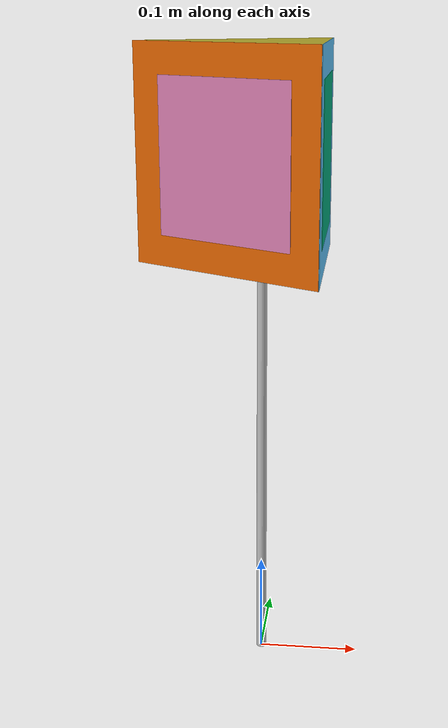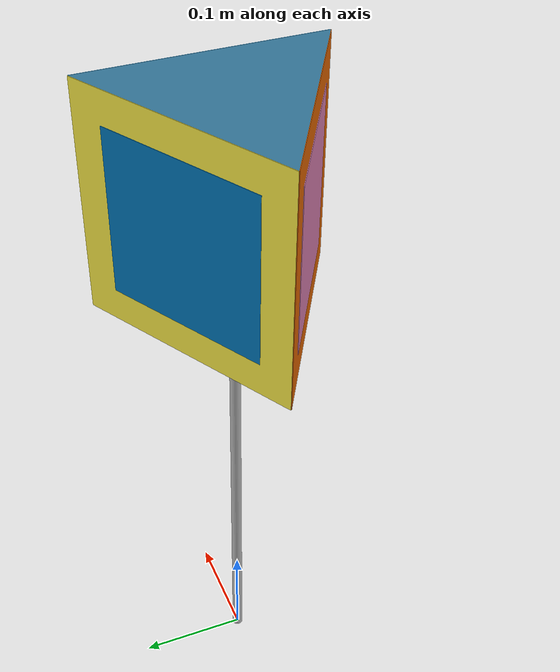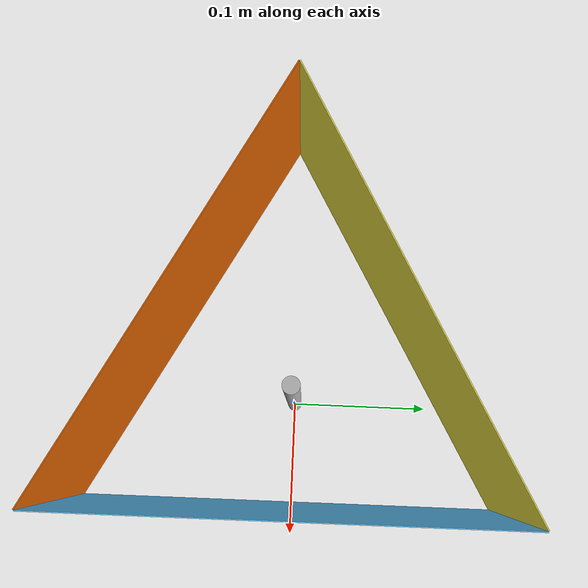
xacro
<?xml version="1.0" encoding="utf-8"?>
<robot xmlns:xacro="http://www.ros.org/wiki/xacro" name="marker">
  <xacro:property name="package" value="marker_description" />
  <xacro:arg name="name" default=""/>
  <xacro:property name="name" value="$(arg name)" />
  <xacro:arg name="family" default="artag"/>
  <xacro:property name="family" value="$(arg family)" />
  <xacro:arg name="id" default="0"/>
  <xacro:property name="id" value="${$(arg id)}" />
  <xacro:arg name="marker_size" default="0.15"/>
  <xacro:property name="marker_size" value="${$(arg marker_size)}" />
  <xacro:arg name="margin" default="0.03"/>
  <xacro:property name="margin" value="${$(arg margin)}" />
  <xacro:arg name="pole_height" default="0.417"/>
  <xacro:property name="pole_height" value="${$(arg pole_height)}" />
  <xacro:arg name="pole_radius" default="0.005"/>
  <xacro:property name="pole_radius" value="${$(arg pole_radius)}" />
  <xacro:include filename="macros/marker.urdf.xacro" />
  <xacro:include filename="macros/pole.urdf.xacro" />
  <xacro:property name="width" value="${marker_size + margin*2}" />
  <xacro:property name="radius" value="${width * sqrt(3) / 6}" />
  <xacro:if value="${name == ''}">
    <xacro:property name="name" value="${family}_${id}" />
  </xacro:if>

  <link name="${name}_box">
  </link>
  <xacro:marker name='${name}_front'/>
  <xacro:marker name='${name}_left'/>
  <xacro:marker name='${name}_right'/>
  <xacro:pole height='${pole_height}' radius='${pole_radius}' name='${name}'/>
  <joint name="margin_front_joint" type="fixed">
    <parent link="${name}_box"/>
    <child link="${name}_front"/>
    <origin xyz="${radius} 0 0" rpy="0 0 0"/>
    <axis xyz="0 0 0"/>
  </joint>
  <joint name="margin_left_joint" type="fixed">
    <parent link="${name}_box"/>
    <child link="${name}_left"/>
    <origin xyz="-${radius * 0.5} ${width / 4} 0" rpy="0 0 ${pi*2/3}"/>
    <axis xyz="0 0 0"/>
  </joint>
  <joint name="margin_right_joint" type="fixed">
    <parent link="${name}_box"/>
    <child link="${name}_right"/>
    <origin xyz="-${radius * 0.5} -${width / 4} 0" rpy="0 0 ${-pi*2/3}"/>
    <axis xyz="0 0 0"/>
  </joint>
  <joint name="${name}_pole_joint" type="fixed">
    <parent link="${name}"/>
    <child link="${name}_box"/>
    <origin xyz="0 0 ${pole_height + marker_size/2 + margin}" rpy="0 0 0"/>
    <axis xyz="0 0 0"/>
  </joint>
</robot>

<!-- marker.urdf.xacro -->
<robot xmlns:xacro="http://wiki.ros.org/xacro">
<xacro:macro name="marker" params="marker_size:=^0.15 margin:=^0.03 name:=^'marker' family:=^'artag' id:=^'0'">
<xacro:property name="material" value="${family}_${id}" />
  <link name="${name}">
    <visual>
        <geometry>
          <box size="0.0005 ${marker_size + margin*2} ${marker_size + margin*2}" />
        </geometry>
        <origin xyz="0.00025 0 0" rpy="0 0 0"/>
    </visual>
    <collision>
        <geometry>
          <box size="0.0005 ${marker_size + margin*2} ${marker_size + margin*2}" />
        </geometry>
        <origin xyz="0.00025 0 0" rpy="0 0 0"/>
    </collision>
    <inertial>
      <mass value="1.0" />
      <inertia  ixx="1.0" ixy="0.0"  ixz="0.0"  iyy="1.0"  iyz="0.0"  izz="1.0" />
    </inertial>
  </link>
  <link name="${name}_material">
    <visual>
        <geometry>
          <box size="0.0005 ${marker_size} ${marker_size}" />
        </geometry>
    </visual>
    <collision>
        <geometry>
          <box size="0.0005 ${marker_size} ${marker_size}" />
        </geometry>
    </collision>
    <inertial>
      <mass value="1.0" />
      <inertia  ixx="1.0" ixy="0.0"  ixz="0.0"  iyy="1.0"  iyz="0.0"  izz="1.0" />
    </inertial>
  </link>
  <joint name="${name}_material_joint" type="continuous">
    <parent link="${name}"/>
    <child link="${name}_material"/>
    <origin xyz="0.00075 0 0" rpy="0 0 0"/>
    <axis xyz="0 0 0"/>
    <limit effort="0" velocity="0"/>
  </joint>
  <gazebo reference="${name}_material">
    <material>${material}</material>
  </gazebo>
  <gazebo reference="${name}">
    <material>
      <ambient>1 1 1 1</ambient>
      <diffuse>1 1 1 1</diffuse>
      <specular>0 0 0 0.0</specular>
      <emissive>0.0 0.0 0.0 0.0</emissive>
    </material>
  </gazebo>

  <gazebo>
    <static>true</static>
  </gazebo>
</xacro:macro>
</robot>

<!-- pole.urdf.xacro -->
<robot xmlns:xacro="http://wiki.ros.org/xacro">
<xacro:macro name="pole" params="height:=0.417 radius:=0.005 name:='marker'">
  <link name="${name}">
    <xacro:if value="${height != 0}">
      <visual>
        <geometry>
          <cylinder length="${height}" radius="${radius}" />
        </geometry>
        <origin xyz="0 0 ${height/2}" rpy="0 0 0"/>
      </visual>
      <collision>
        <geometry>
          <cylinder length="${height}" radius="${radius}" />
        </geometry>
        <origin xyz="0 0 ${height/2}" rpy="0 0 0"/>
      </collision>
      <inertial>
        <mass value="1.0" />
        <inertia  ixx="1.0" ixy="0.0"  ixz="0.0"  iyy="1.0"  iyz="0.0"  izz="1.0" />
      </inertial>
    </xacro:if>
  </link>
  <gazebo reference="${name}">
    <material>
      <ambient>0.6 0.3 0 1</ambient>
      <diffuse>0.6 0.3 0 1</diffuse>
      <specular>0 0 0 0.0</specular>
      <emissive>0.0 0.0 0.0 0.0</emissive>
    </material>
  </gazebo>
  <gazebo>
    <static>true</static>
  </gazebo>
</xacro:macro>
</robot>
